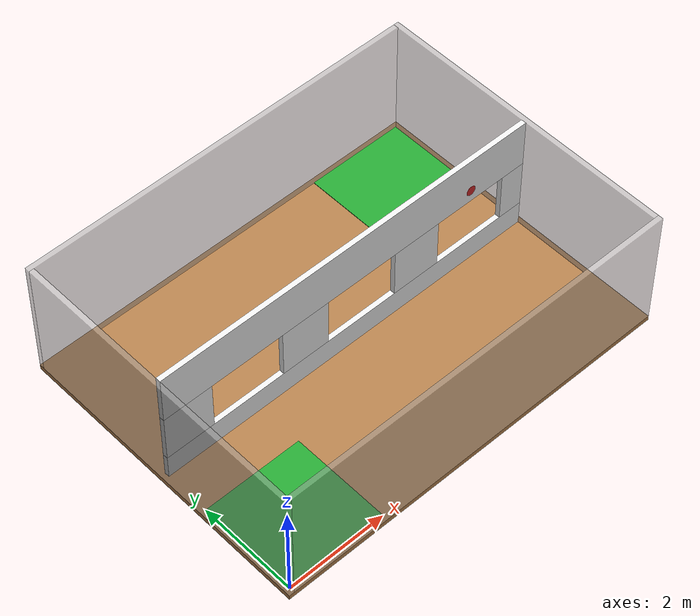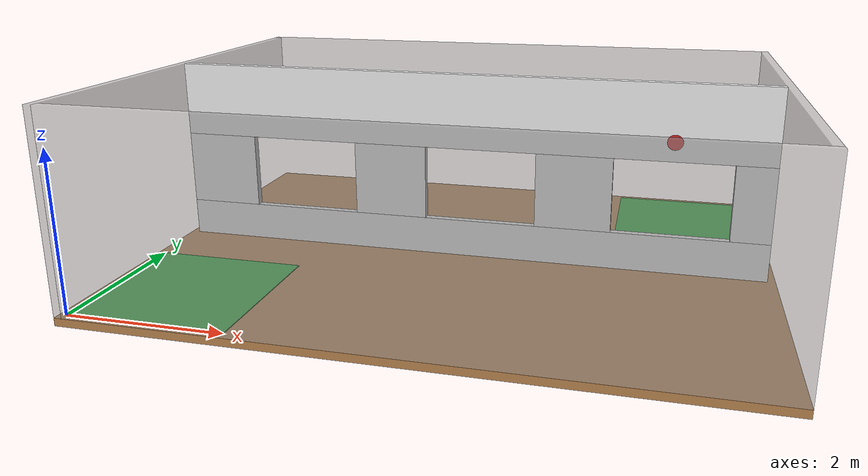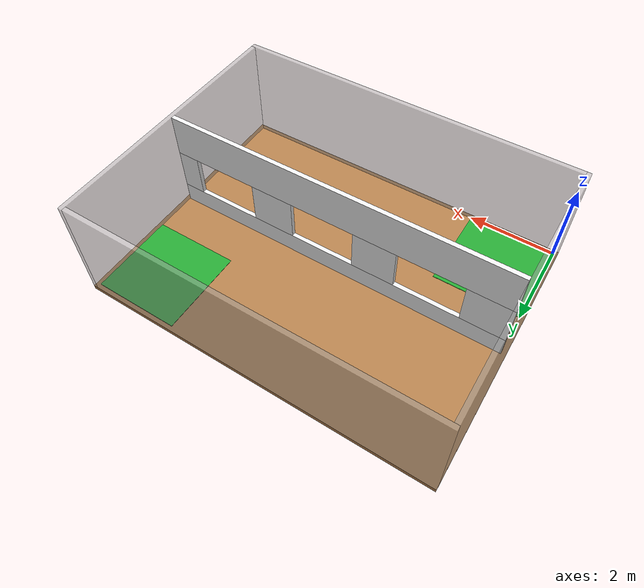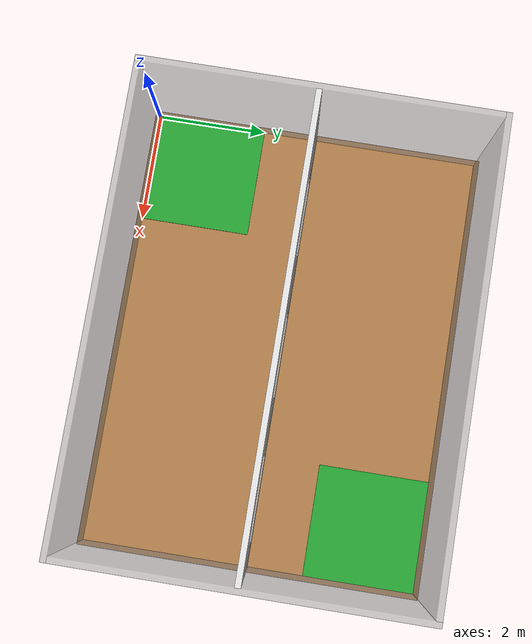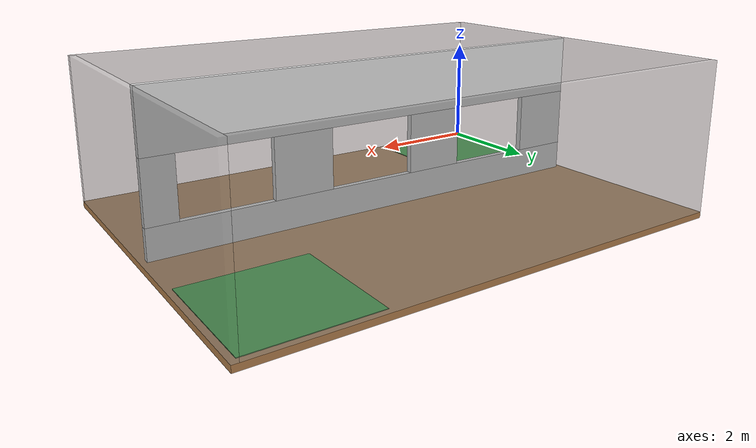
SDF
<?xml version="1.0" ?>
<sdf version="1.5">
  <world name="default">

    <include>
      <uri>model://sun</uri>
    </include>

    <physics name="default_physics" default="0" type="ode">
      <gravity>0 0 -9.8066</gravity>
      <ode>
        <solver>
          <type>quick</type>
          <iters>10</iters>
          <sor>1.3</sor>
          <use_dynamic_moi_rescaling>0</use_dynamic_moi_rescaling>
        </solver>
        <constraints>
          <cfm>0</cfm>
          <erp>0.2</erp>
          <contact_max_correcting_vel>100</contact_max_correcting_vel>
          <contact_surface_layer>0.001</contact_surface_layer>
        </constraints>
      </ode>
      <max_step_size>0.004</max_step_size>
      <real_time_factor>1</real_time_factor>
      <real_time_update_rate>250</real_time_update_rate>
      <magnetic_field>6.0e-6 2.3e-5 -4.2e-5</magnetic_field>
    </physics>

    <model name="box_1">
      <pose>4.05 -0.05 1.25  0 0 0</pose>
      <static>true</static>
      <link name="link">
        <collision name="collision">
          <geometry>
            <box>
              <size>8.1 0.1 2.5 </size>
            </box>
          </geometry>
        </collision>
        <visual name="visual">
          <geometry>
            <box>
              <size>8.1 0.1 2.5 </size>
            </box>
          </geometry>
          <material>
            <script>
              <name>Gazebo/GreyTransparent</name>
              <uri>file://media/materials/scripts/gazebo.material</uri>
            </script>
          </material>
        </visual>
      </link>
    </model>

    <model name="box_2">
      <pose>8.05 3.05 1.25  0 0 0</pose>
      <static>true</static>
      <link name="link">
        <collision name="collision">
          <geometry>
            <box>
              <size>0.1 6.1 2.5 </size>
            </box>
          </geometry>
        </collision>
        <visual name="visual">
          <geometry>
            <box>
              <size>0.1 6.1 2.5 </size>
            </box>
          </geometry>
          <material>
            <script>
              <name>Gazebo/GreyTransparent</name>
              <uri>file://media/materials/scripts/gazebo.material</uri>
            </script>
          </material>
        </visual>
      </link>
    </model>

    <model name="box_3">
      <pose>3.95 6.05 1.25  0 0 0</pose>
      <static>true</static>
      <link name="link">
        <collision name="collision">
          <geometry>
            <box>
              <size>8.1 0.1 2.5 </size>
            </box>
          </geometry>
        </collision>
        <visual name="visual">
          <geometry>
            <box>
              <size>8.1 0.1 2.5 </size>
            </box>
          </geometry>
          <material>
            <script>
              <name>Gazebo/GreyTransparent</name>
              <uri>file://media/materials/scripts/gazebo.material</uri>
            </script>
          </material>
        </visual>
      </link>
    </model>

    <model name="box_4">
      <pose>-0.05 2.95 1.25  0 0 0</pose>
      <static>true</static>
      <link name="link">
        <collision name="collision">
          <geometry>
            <box>
              <size>0.1 6.1 2.5 </size>
            </box>
          </geometry>
        </collision>
        <visual name="visual">
          <geometry>
            <box>
              <size>0.1 6.1 2.5 </size>
            </box>
          </geometry>
          <material>
            <script>
              <name>Gazebo/GreyTransparent</name>
              <uri>file://media/materials/scripts/gazebo.material</uri>
            </script>
          </material>
        </visual>
      </link>
    </model>

    <model name="box_5">
      <pose>4.0 3.0 -0.05  0 0 0</pose>
      <static>true</static>
      <link name="link">
        <collision name="collision">
          <geometry>
            <box>
              <size>8.2 6.2 0.1 </size>
            </box>
          </geometry>
        </collision>
        <visual name="visual">
          <geometry>
            <box>
              <size>8.2 6.2 0.1 </size>
            </box>
          </geometry>
          <material>
            <script>
              <name>Gazebo/WoodFloor</name>
              <uri>file://media/materials/scripts/gazebo.material</uri>
            </script>
          </material>
        </visual>
      </link>
    </model>

    <model name="box_6">
      <pose>1.0 1.0 0.005  0 0 0</pose>
      <static>true</static>
      <link name="link">
        <collision name="collision">
          <geometry>
            <box>
              <size>2.0 2.0 0.01 </size>
            </box>
          </geometry>
        </collision>
        <visual name="visual">
          <geometry>
            <box>
              <size>2.0 2.0 0.01 </size>
            </box>
          </geometry>
          <material>
            <script>
              <name>Gazebo/Green</name>
              <uri>file://media/materials/scripts/gazebo.material</uri>
            </script>
          </material>
        </visual>
      </link>
    </model>

    <model name="box_7">
      <pose>7.0 5.0 0.005  0 0 0</pose>
      <static>true</static>
      <link name="link">
        <collision name="collision">
          <geometry>
            <box>
              <size>2.0 2.0 0.01 </size>
            </box>
          </geometry>
        </collision>
        <visual name="visual">
          <geometry>
            <box>
              <size>2.0 2.0 0.01 </size>
            </box>
          </geometry>
          <material>
            <script>
              <name>Gazebo/Green</name>
              <uri>file://media/materials/scripts/gazebo.material</uri>
            </script>
          </material>
        </visual>
      </link>
    </model>

    <model name="box_8">
      <pose>4.0 2.95 0.25  0 0 0</pose>
      <static>true</static>
      <link name="link">
        <collision name="collision">
          <geometry>
            <box>
              <size>8.0 0.1 0.5 </size>
            </box>
          </geometry>
        </collision>
        <visual name="visual">
          <geometry>
            <box>
              <size>8.0 0.1 0.5 </size>
            </box>
          </geometry>
          <material>
            <script>
              <name>Gazebo/White</name>
              <uri>file://media/materials/scripts/gazebo.material</uri>
            </script>
          </material>
        </visual>
      </link>
    </model>

    <model name="box_9">
      <pose>4.0 2.95 2.0  0 0 0</pose>
      <static>true</static>
      <link name="link">
        <collision name="collision">
          <geometry>
            <box>
              <size>8.0 0.1 1.0 </size>
            </box>
          </geometry>
        </collision>
        <visual name="visual">
          <geometry>
            <box>
              <size>8.0 0.1 1.0 </size>
            </box>
          </geometry>
          <material>
            <script>
              <name>Gazebo/White</name>
              <uri>file://media/materials/scripts/gazebo.material</uri>
            </script>
          </material>
        </visual>
      </link>
    </model>

    <model name="box_10">
      <pose>0.5 2.95 1.0  0 0 0</pose>
      <static>true</static>
      <link name="link">
        <collision name="collision">
          <geometry>
            <box>
              <size>1.0 0.1 1.0 </size>
            </box>
          </geometry>
        </collision>
        <visual name="visual">
          <geometry>
            <box>
              <size>1.0 0.1 1.0 </size>
            </box>
          </geometry>
          <material>
            <script>
              <name>Gazebo/White</name>
              <uri>file://media/materials/scripts/gazebo.material</uri>
            </script>
          </material>
        </visual>
      </link>
    </model>

    <model name="box_11">
      <pose>3.0 2.95 1.0  0 0 0</pose>
      <static>true</static>
      <link name="link">
        <collision name="collision">
          <geometry>
            <box>
              <size>1.0 0.1 1.0 </size>
            </box>
          </geometry>
        </collision>
        <visual name="visual">
          <geometry>
            <box>
              <size>1.0 0.1 1.0 </size>
            </box>
          </geometry>
          <material>
            <script>
              <name>Gazebo/White</name>
              <uri>file://media/materials/scripts/gazebo.material</uri>
            </script>
          </material>
        </visual>
      </link>
    </model>

    <model name="box_12">
      <pose>5.5 2.95 1.0  0 0 0</pose>
      <static>true</static>
      <link name="link">
        <collision name="collision">
          <geometry>
            <box>
              <size>1.0 0.1 1.0 </size>
            </box>
          </geometry>
        </collision>
        <visual name="visual">
          <geometry>
            <box>
              <size>1.0 0.1 1.0 </size>
            </box>
          </geometry>
          <material>
            <script>
              <name>Gazebo/White</name>
              <uri>file://media/materials/scripts/gazebo.material</uri>
            </script>
          </material>
        </visual>
      </link>
    </model>

    <model name="box_13">
      <pose>7.75 2.95 1.0  0 0 0</pose>
      <static>true</static>
      <link name="link">
        <collision name="collision">
          <geometry>
            <box>
              <size>0.5 0.1 1.0 </size>
            </box>
          </geometry>
        </collision>
        <visual name="visual">
          <geometry>
            <box>
              <size>0.5 0.1 1.0 </size>
            </box>
          </geometry>
          <material>
            <script>
              <name>Gazebo/White</name>
              <uri>file://media/materials/scripts/gazebo.material</uri>
            </script>
          </material>
        </visual>
      </link>
    </model>

    <model name="cylinder_1">
      <pose>6.75 2.9 1.75  1.57079632679 0 0</pose>
      <static>true</static>
      <link name="link">
        <visual name="visual">
          <geometry>
            <cylinder>
              <radius>0.1 </radius>
              <length>0.002 </length>
            </cylinder>
          </geometry>
          <material>
            <script>
              <name>Gazebo/Red</name>
              <uri>file://media/materials/scripts/gazebo.material</uri>
            </script>
          </material>
        </visual>
      </link>
    </model>

    <model name="box_14">
      <pose>1.75 2.95 1.0  0 0 0</pose>
      <static>true</static>
      <link name="link">
        <collision name="collision">
          <geometry>
            <box>
              <size>1.5 0.1 1.0 </size>
            </box>
          </geometry>
        </collision>
        <visual name="visual">
          <geometry>
            <box>
              <size>1.5 0.1 1.0 </size>
            </box>
          </geometry>
          <material>
            <script>
              <name>Gazebo/Grey</name>
              <uri>file://media/materials/scripts/gazebo.material</uri>
            </script>
          </material>
          <transparency>1.0</transparency>
        </visual>
      </link>
    </model>

    <model name="box_15">
      <pose>4.25 2.95 1.0  0 0 0</pose>
      <static>true</static>
      <link name="link">
        <collision name="collision">
          <geometry>
            <box>
              <size>1.5 0.1 1.0 </size>
            </box>
          </geometry>
        </collision>
        <visual name="visual">
          <geometry>
            <box>
              <size>1.5 0.1 1.0 </size>
            </box>
          </geometry>
          <material>
            <script>
              <name>Gazebo/Grey</name>
              <uri>file://media/materials/scripts/gazebo.material</uri>
            </script>
          </material>
          <transparency>1.0</transparency>
        </visual>
      </link>
    </model>

  </world>
</sdf>
